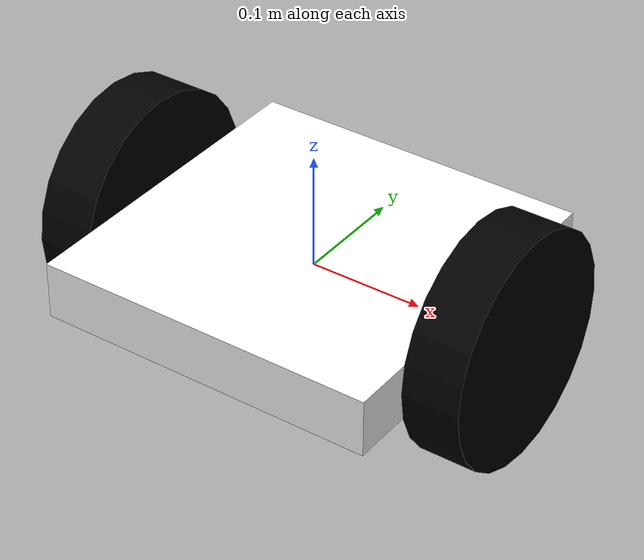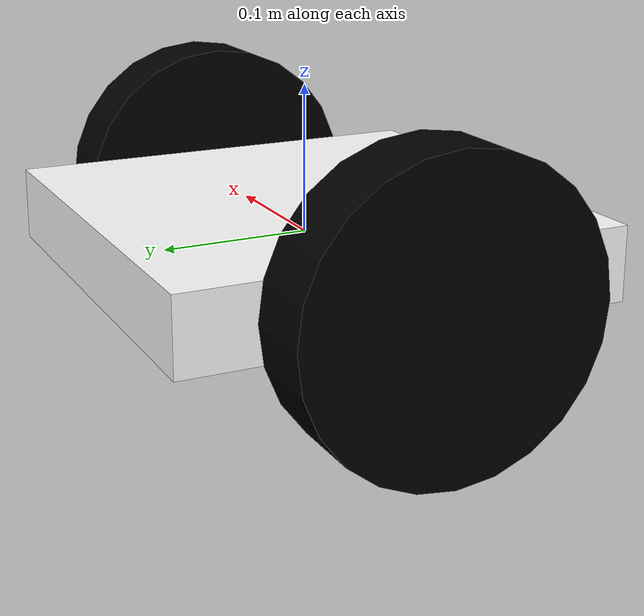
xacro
<?xml version="1.0"?>
<robot name="mobilerobot" xmlns:xacro="http://ros.org/wiki/xacro">

	<xacro:property name="wheel_width" value="0.05" />
	<xacro:property name="wheel_radius" value="0.1" />
	<xacro:property name="wheel_separation" value="0.35" />
	<xacro:property name="base_frame_width" value="0.3" />
	<xacro:property name="base_frame_length" value="0.3" />
	<xacro:property name="base_frame_height" value="0.05" />
	<xacro:property name="pi" value="3.1415" />

	<material name="black">
		<color rgba="0 0 0 1"/>
	</material>

	<material name="white">
		<color rgba="1 1 1 1"/>
	</material>

	<xacro:macro name="rec_inertial" params="mass">
		<inertial>
			<mass value="${mass}" />
			<inertia ixx="0.0346875" ixy="0.0" ixz="0.0" iyy="0.0346875" iyz="0.0" izz="0.0675" />
		</inertial>
	</xacro:macro>

	<xacro:macro name="cir_inertial" params="mass">
		<inertial>
			<mass value="${mass}" />
			<inertia ixx="0.00425424005" ixy="0.0" ixz="0.0" iyy="0.00425424005" iyz="0.0" izz="0.00785398163" />
		</inertial>
	</xacro:macro>

	<xacro:macro name="wheel" params="prefix reflect">
		<link name="${prefix}_wheel">
			<visual>
				<origin xyz="0 0 0" rpy="0 ${pi/2} 0"/>
				<geometry>
					<cylinder radius="${wheel_radius}" length="${wheel_width}"/>
				</geometry>
				<material name="black"/>
			</visual>
			<collision>
				<origin xyz="0 0 0" rpy="0 ${pi/2} 0"/>
				<geometry>
					<cylinder radius="${wheel_radius}" length="${wheel_width}"/>
				</geometry>
				<surface>
					<friction>
						<torsional>
							<coefficient>1</coefficient>
						</torsional>
					</friction>
				</surface>
			</collision>
			<xacro:cir_inertial mass="${300 * pi * wheel_radius * wheel_radius * wheel_width}"/>
		</link>
		<joint name="base_to_${prefix}_wheel_joint" type="continuous">
			<parent link="base_link"/>
			<child link="${prefix}_wheel"/>
			<axis xyz="1 0 0" rpy="0 0 0"/>
			<origin xyz="${wheel_separation*reflect/2} 0 0"/>
			<dynamics damping="0"/>
		</joint>

		<gazebo reference="${prefix}_wheel">
			<mu1 value="1"/>
			<mu2 value="0.7"/>
			<material>Gazebo/Blue</material>
		</gazebo>

		<transmission name="${prefix}_wheel_trans">
			<type>transmission_interface/SimpleTransmission</type>
			<joint name="base_to_${prefix}_wheel_joint">
				<hardwareInterface>hardware_interface/VelocityJointInterface</hardwareInterface>
			</joint>
			<actuator name="${prefix}_wheel_motor">
				<mechanicalReduction>1</mechanicalReduction>
				<hardwareInterface>VelocityJointInterface</hardwareInterface>
			</actuator>
		</transmission>
	</xacro:macro>

	<link name="base_link">
		<visual>
			<geometry>
				<box size="${base_frame_width} ${base_frame_length} ${base_frame_height}"/>
			</geometry>
			<material name="white"/>
		</visual>
		<collision>
			<geometry>
				<box size="${base_frame_width} ${base_frame_length} ${base_frame_height}"/>
			</geometry>
			<surface>
				<friction>
					<torsional>
						<coefficient>1</coefficient>
					</torsional>
				</friction>
			</surface>
		</collision>
		<xacro:rec_inertial mass="${8050 * base_frame_width * base_frame_length * base_frame_height}"/>
	</link>

	<xacro:wheel prefix="right" reflect="1"/>
	<xacro:wheel prefix="left" reflect="-1"/>

	<gazebo reference='base_link'>
		<mu1 value="0.7"/>
		<mu2 value="0.4"/>
		<material>Gazebo/White</material>
	</gazebo>

	<gazebo>
		<plugin name="gazebo_ros_control" filename="libgazebo_ros_control.so">
			<robotSimType>gazebo_ros_control/DefaultRobotHWSim</robotSimType>
			<legacyModeNS>true</legacyModeNS>
		</plugin>
	</gazebo>
</robot>
